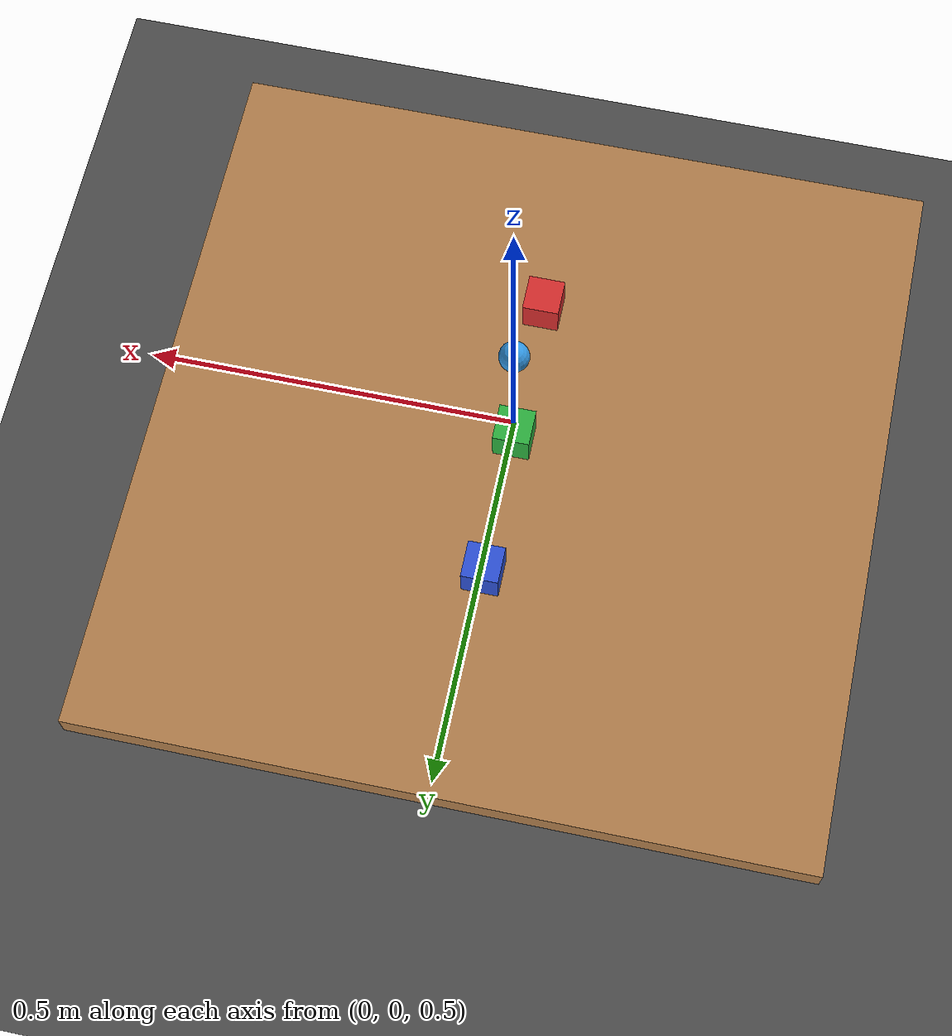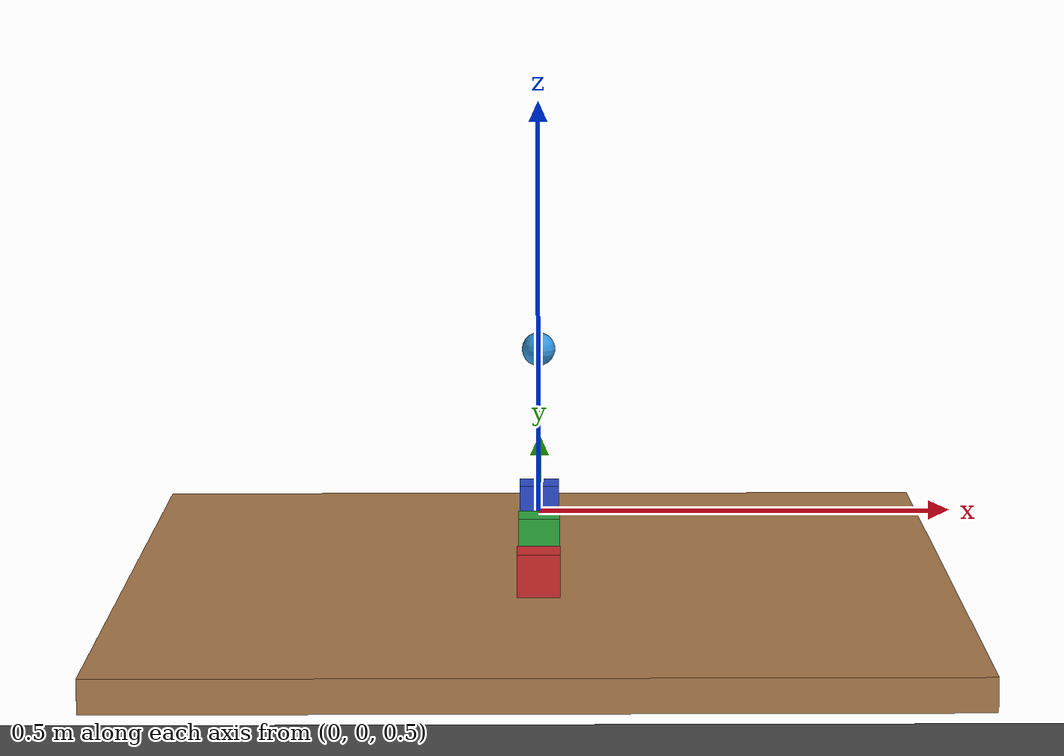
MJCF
<mujoco model="gauntlet_tabletop_stack">
  <option integrator="implicitfast" timestep="0.01" gravity="0 0 -9.81"/>

  <visual>
    <headlight diffuse="0.6 0.6 0.6" ambient="0.3 0.3 0.3" specular="0 0 0"/>
    <rgba haze="0.15 0.25 0.35 1"/>
  </visual>

  <asset>
    <texture type="skybox" builtin="gradient" rgb1="0.3 0.5 0.7" rgb2="0 0 0"
             width="512" height="512"/>
    <material name="table_mat" rgba="0.7 0.5 0.3 1"/>
    <material name="cube_a_mat" rgba="0.85 0.18 0.18 1"/>
    <material name="cube_b_mat" rgba="0.18 0.7 0.25 1"/>
    <material name="cube_c_mat" rgba="0.18 0.32 0.85 1"/>
    <material name="ee_mat" rgba="0.2 0.6 0.9 1"/>
  </asset>

  <worldbody>
    <light pos="0 0 2" dir="0 0 -1" diffuse="1 1 1"/>

    <camera name="main" pos="0.6 -0.6 0.8" xyaxes="1 1 0 0 0 1"/>

    <geom name="floor" type="plane" size="2 2 0.1" rgba="0.3 0.3 0.3 1"/>

    <body name="table" pos="0 0 0.4">
      <geom name="table_top" type="box" size="0.5 0.5 0.02" material="table_mat"/>
    </body>

    <body name="cube_a" pos="0.0 -0.2 0.47">
      <freejoint/>
      <geom name="cube_a_geom" type="box" size="0.025 0.025 0.025"
            material="cube_a_mat" mass="0.1"/>
    </body>

    <body name="cube_b" pos="0.0 0.0 0.47">
      <freejoint/>
      <geom name="cube_b_geom" type="box" size="0.025 0.025 0.025"
            material="cube_b_mat" mass="0.1"/>
    </body>

    <body name="cube_c" pos="0.0 0.2 0.47">
      <freejoint/>
      <geom name="cube_c_geom" type="box" size="0.025 0.025 0.025"
            material="cube_c_mat" mass="0.1"/>
    </body>

    <body name="ee" mocap="true" pos="0 0 0.7">
      <geom name="ee_geom" type="sphere" size="0.02" material="ee_mat"
            contype="0" conaffinity="0"/>
    </body>
  </worldbody>
</mujoco>
